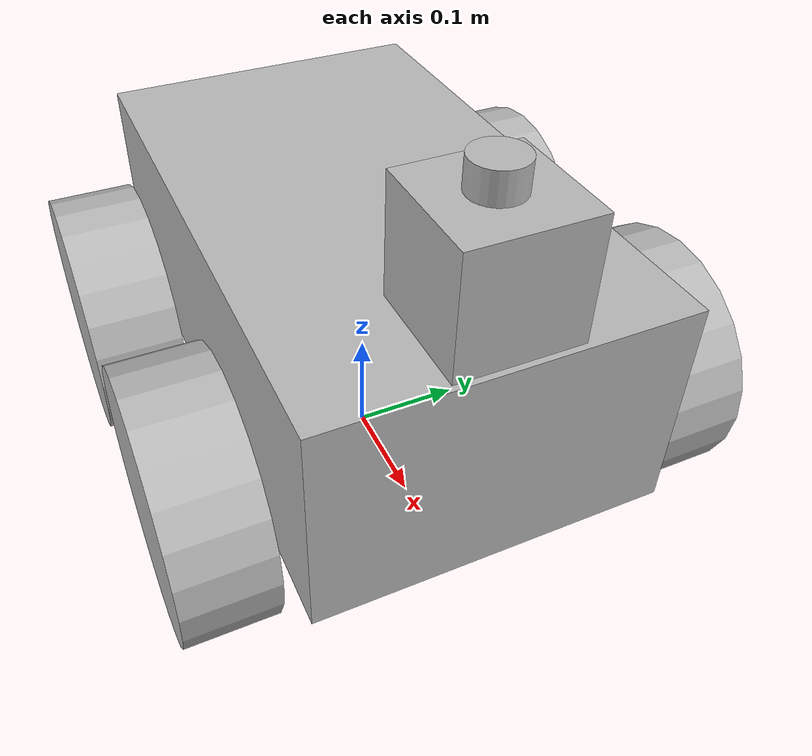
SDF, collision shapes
<?xml version="1.0" ?>
<sdf version="1.5">
  <model name="pioneer3at">
    <pose>0 0 0.180 0 0 0</pose>
    <static>false</static>
    <link name="chassis">
      <inertial>
        <mass>14.0</mass>
        <inertia>
          <ixx>0.147116667</ixx>
          <ixy>0.0</ixy>
          <ixz>0.0</ixz>
          <iyy>0.334951167</iyy>
          <iyz>0.0</iyz>
          <izz>0.3978345</izz>
        </inertia>
      </inertial>
      <collision name="collision">
        <geometry>
          <box>
            <size>0.501 0.300 0.19</size>
          </box>
        </geometry>
      </collision>
      <visual name="visual">
        <geometry>
          <mesh>
            <uri>model://pioneer3at/meshes/chassis.dae</uri>
          </mesh>
        </geometry>
      </visual>
    </link>
    <link name="right_front_wheel">
      <pose>0.125 -0.201 -0.06 1.5707 0 0</pose>

      <inertial>
        <mass>1.5</mass>
        <inertia>
          <ixx>0.005240625</ixx>
          <iyy>0.005240625</iyy>
          <izz>0.009075</izz>
          <ixy>0</ixy>
          <ixz>0</ixz>
          <iyz>0</iyz>
        </inertia>
      </inertial>

      <collision name="collision">
        <geometry>
          <cylinder>
            <radius>0.110</radius>
            <length>0.075</length>
          </cylinder>
        </geometry>
        <surface>
          <friction>
            <ode>
              <mu>1</mu>
              <mu2>1</mu2>
              <slip1>0.5</slip1>
              <slip2>0</slip2>
            </ode>
          </friction>
        </surface>
      </collision>
      <visual name="visual">
        <geometry>
          <mesh>
            <uri>model://pioneer3at/meshes/wheel.dae</uri>
          </mesh>
        </geometry>
      </visual>
    </link>
    <link name="left_front_wheel">
      <pose>0.125 0.201 -0.06 1.5707 0 0</pose>

      <inertial>
        <mass>1.5</mass>
        <inertia>
          <ixx>0.005240625</ixx>
          <iyy>0.005240625</iyy>
          <izz>0.009075</izz>
          <ixy>0</ixy>
          <ixz>0</ixz>
          <iyz>0</iyz>
        </inertia>
      </inertial>

      <collision name="collision">
        <geometry>
          <cylinder>
            <radius>0.110</radius>
            <length>0.075</length>
          </cylinder>
        </geometry>
        <surface>
          <friction>
            <ode>
              <mu>1</mu>
              <mu2>1</mu2>
              <slip1>0.5</slip1>
              <slip2>0</slip2>
            </ode>
          </friction>
        </surface>
      </collision>
      <visual name="visual">
        <geometry>
          <mesh>
            <uri>model://pioneer3at/meshes/wheel.dae</uri>
          </mesh>
        </geometry>
      </visual>
    </link>
    <link name="right_rear_wheel">
      <pose>-0.125 -0.201 -0.06 1.5707 0 0</pose>

      <inertial>
        <mass>1.5</mass>
        <inertia>
          <ixx>0.005240625</ixx>
          <iyy>0.005240625</iyy>
          <izz>0.009075</izz>
          <ixy>0</ixy>
          <ixz>0</ixz>
          <iyz>0</iyz>
        </inertia>
      </inertial>

      <collision name="collision">
        <geometry>
          <cylinder>
            <radius>0.110</radius>
            <length>0.075</length>
          </cylinder>
        </geometry>
        <surface>
          <friction>
            <ode>
              <mu>1</mu>
              <mu2>1</mu2>
              <slip1>0.5</slip1>
              <slip2>0</slip2>
            </ode>
          </friction>
        </surface>
      </collision>
      <visual name="visual">
        <geometry>
          <mesh>
            <uri>model://pioneer3at/meshes/wheel.dae</uri>
          </mesh>
        </geometry>
      </visual>
    </link>
    <link name="left_rear_wheel">
      <pose>-0.125 0.201 -0.06 1.5707 0 0</pose>

      <inertial>
        <mass>1.5</mass>
        <inertia>
          <ixx>0.005240625</ixx>
          <iyy>0.005240625</iyy>
          <izz>0.009075</izz>
          <ixy>0</ixy>
          <ixz>0</ixz>
          <iyz>0</iyz>
        </inertia>
      </inertial>

      <collision name="collision">
        <geometry>
          <cylinder>
            <radius>0.110</radius>
            <length>0.075</length>
          </cylinder>
        </geometry>
        <surface>
          <friction>
            <ode>
              <mu>1</mu>
              <mu2>1</mu2>
              <slip1>0.5</slip1>
              <slip2>0</slip2>
            </ode>
          </friction>
        </surface>
      </collision>
      <visual name="visual">
        <geometry>
          <mesh>
            <uri>model://pioneer3at/meshes/wheel.dae</uri>
          </mesh>
        </geometry>
      </visual>
    </link>
    <joint type="revolute" name="right_front">
      <pose>0 0 0 0 0 0</pose>
      <child>right_front_wheel</child>
      <parent>chassis</parent>
      <axis>
        <xyz>0 1 0</xyz>
        <use_parent_model_frame>true</use_parent_model_frame>
      </axis>
    </joint>
    <joint type="revolute" name="right_rear">
      <pose>0 0 0 0 0 0</pose>
      <child>right_rear_wheel</child>
      <parent>chassis</parent>
      <axis>
        <xyz>0 1 0</xyz>
        <use_parent_model_frame>true</use_parent_model_frame>
      </axis>
    </joint>
    <joint type="revolute" name="left_front">
      <pose>0 0 0 0 0 0</pose>
      <child>left_front_wheel</child>
      <parent>chassis</parent>
      <axis>
        <xyz>0 1 0</xyz>
        <use_parent_model_frame>true</use_parent_model_frame>
      </axis>
    </joint>
    <joint type="revolute" name="left_rear">
      <pose>0 0 0 0 0 0</pose>
      <child>left_rear_wheel</child>
      <parent>chassis</parent>
      <axis>
        <xyz>0 1 0</xyz>
        <use_parent_model_frame>true</use_parent_model_frame>
      </axis>
    </joint>
    <plugin name="SkidSteerDrivePlugin" filename="libSkidSteerDrivePlugin.so">
      <right_front>right_front</right_front>
      <right_rear>right_rear</right_rear>
      <left_front>left_front</left_front>
      <left_rear>left_rear</left_rear>
      <MaxForce>5.0</MaxForce>
    </plugin>

    	<!-- Adding Camera -->

    	<include>
      <uri>model://my_camera</uri>
      <pose>0.2 0 0.15 0 0 0</pose>
    </include>
    <joint name="camera_joint" type="revolute">
      <child>camera::link</child>
      <parent>chassis</parent>
      <axis>
        <xyz>0 0 1</xyz>
        <limit>
          <upper>0</upper>
          <lower>0</lower>
        </limit>
      </axis>
    </joint>

      <!-- Adding Hokuyo -->

      <include>
        <uri>model://my_hokuyo</uri>
        <pose>0.2 0 0.19 0 0 0</pose>
      </include>
      <joint name="hokuyo_joint" type="revolute">
        <child>hokuyo::link</child>
        <parent>chassis</parent>
        <axis>
          <xyz>0 0 1</xyz>
          <limit>
            <upper>0</upper>
            <lower>0</lower>
          </limit>
        </axis>
      </joint>

      <!-- Camera Publisher Plugin -->

      <!-- Laser Publisher Plugin -->

  </model>
</sdf>

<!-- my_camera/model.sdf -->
<sdf version="1.5">
  <model name="camera">
    <pose>0 0 0.05 0 0 0</pose>
    <link name="link">
      <inertial>
        <mass>0.1</mass>
        <inertia>
          <ixx>0.000166667</ixx>
          <iyy>0.000166667</iyy>
          <izz>0.000166667</izz>
        </inertia>
      </inertial>
      <collision name="collision">
        <geometry>
          <box>
            <size>0.1 0.1 0.1</size>
          </box>
        </geometry>
      </collision>
      <visual name="visual">
        <geometry>
          <box>
            <size>0.1 0.1 0.1</size>
          </box>
        </geometry>
      </visual>
      <sensor name="camera" type="camera">
        <camera>
          <horizontal_fov>1.047</horizontal_fov>
          <image>
            <width>320</width>
            <height>240</height>
          </image>
          <clip>
            <near>0.1</near>
            <far>100</far>
          </clip>
        </camera>
        <always_on>1</always_on>
        <update_rate>30</update_rate>
        <visualize>true</visualize>
        <plugin name="camera_controller" filename="libgazebo_ros_camera.so">
        <alwaysOn>true</alwaysOn>
        <updateRate>0.0</updateRate>
        <cameraName>SOSP3AT/camera1</cameraName>
        <imageTopicName>image_raw</imageTopicName>
        <cameraInfoTopicName>camera_info</cameraInfoTopicName>
        <frameName>camera_link</frameName>
        <hackBaseline>0.07</hackBaseline>
        <distortionK1>0.0</distortionK1>
        <distortionK2>0.0</distortionK2>
        <distortionK3>0.0</distortionK3>
        <distortionT1>0.0</distortionT1>
        <distortionT2>0.0</distortionT2>
      </plugin>
      </sensor>
    </link>
  </model>
</sdf>

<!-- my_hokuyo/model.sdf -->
<sdf version="1.5">
  <model name="hokuyo">
    <pose>0 0 0.035 0 0 0</pose>
    <link name="link">
      <inertial>
        <mass>0.1</mass>
      </inertial>
      <visual name="visual">
        <geometry>
          <mesh>
            <uri>model://hokuyo/meshes/hokuyo.dae</uri>
          </mesh>
        </geometry>
      </visual>
      <collision name="collision-base">
        <pose>0 0 -0.0145 0 0 0</pose>
        <geometry>
          <box>
            <size>0.05 0.05 0.041</size>
          </box>
        </geometry>
      </collision>
      <collision name="collision-top">
        <pose>0 0 0.0205 0 0 0</pose>
        <geometry>
          <cylinder>
            <radius>0.021</radius>
            <length>0.029</length>
          </cylinder>
        </geometry>
      </collision>
      <sensor name="laser" type="ray">
        <pose>0.01 0 0.0175 0 -0 0</pose>
        <ray>
          <scan>
            <horizontal>
              <samples>640</samples>
              <resolution>1</resolution>
              <min_angle>-2.26889</min_angle>
              <max_angle>2.268899</max_angle>
            </horizontal>
          </scan>
          <range>
            <min>0.08</min>
            <max>10</max>
            <resolution>0.01</resolution>
          </range>
        </ray>

        <plugin name="hokuyo_node" filename="libgazebo_ros_laser.so">
          <topicName>/laser/scan</topicName>
          <frameName>/hokuyo_sensor_link</frameName>
        </plugin>
        <always_on>1</always_on>
        <update_rate>30</update_rate>
        <visualize>true</visualize>
      </sensor>
    </link>
  </model>
</sdf>
